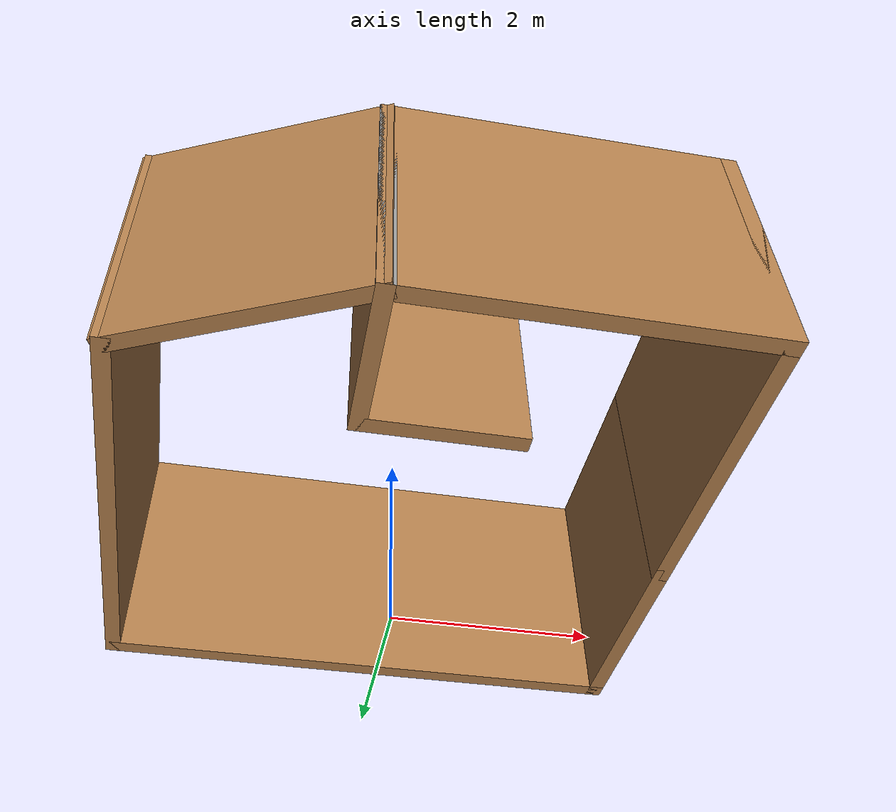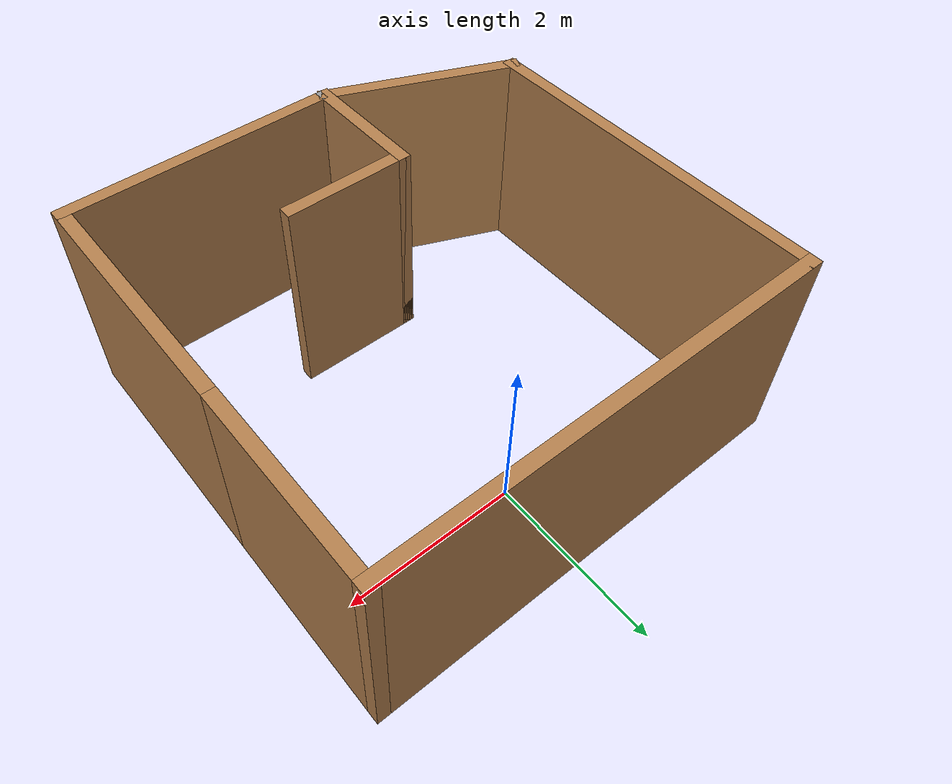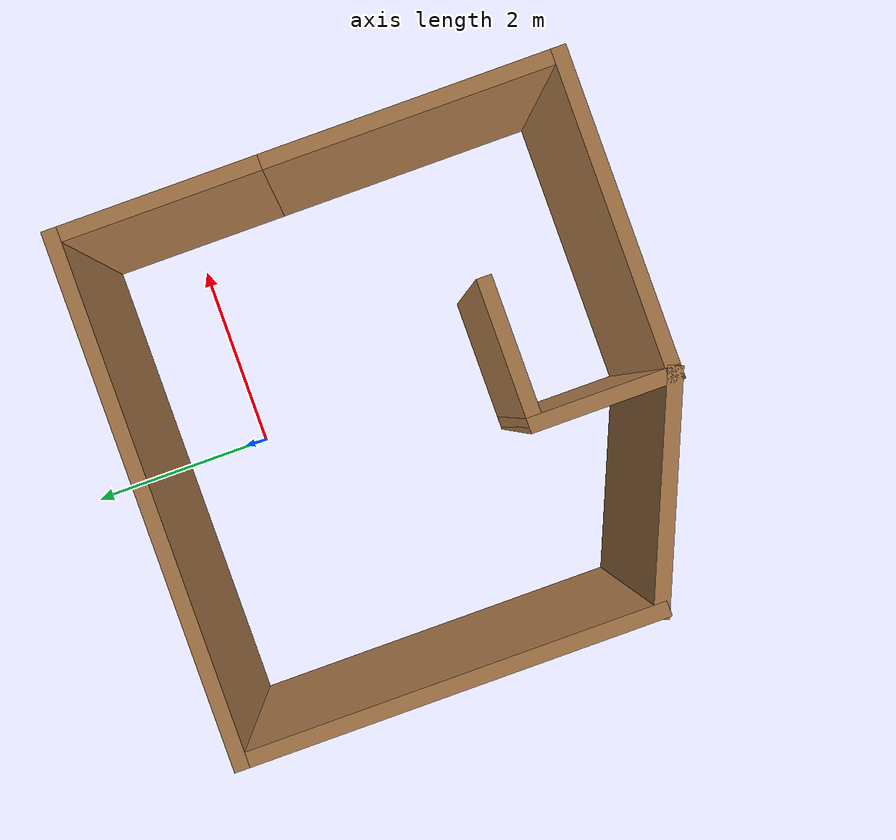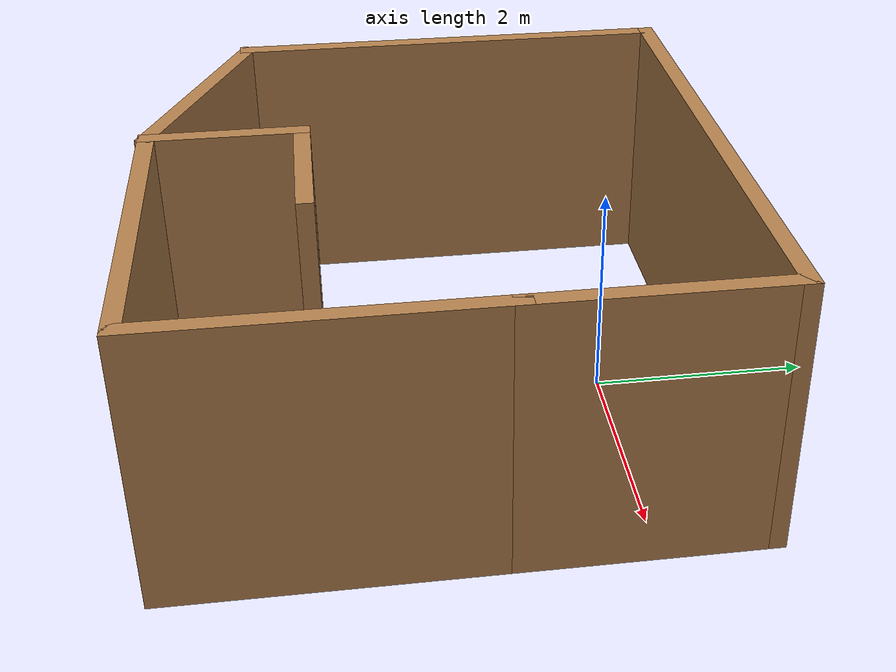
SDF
<?xml version='1.0'?>
<sdf version='1.7'>
  <model name='my_custom_world.world'>
    <pose>-0.17168 -1.50668 0 0 -0 0</pose>
    <link name='Wall_10'>
      <collision name='Wall_10_Collision'>
        <geometry>
          <box>
            <size>5.25 0.15 2.5</size>
          </box>
        </geometry>
        <pose>0 0 1.25 0 -0 0</pose>
      </collision>
      <visual name='Wall_10_Visual'>
        <pose>0 0 1.25 0 -0 0</pose>
        <geometry>
          <box>
            <size>5.25 0.15 2.5</size>
          </box>
        </geometry>
        <material>
          <script>
            <uri>file://media/materials/scripts/gazebo.material</uri>
            <name>Gazebo/Wood</name>
          </script>
          <ambient>1 1 1 1</ambient>
        </material>
        <meta>
          <layer>0</layer>
        </meta>
      </visual>
      <pose>0.01168 2.48668 0 0 -0 3.14159</pose>
    </link>
    <link name='Wall_11'>
      <collision name='Wall_11_Collision'>
        <geometry>
          <box>
            <size>4.25 0.15 2.5</size>
          </box>
        </geometry>
        <pose>0 0 1.25 0 -0 0</pose>
      </collision>
      <visual name='Wall_11_Visual'>
        <pose>0 0 1.25 0 -0 0</pose>
        <geometry>
          <box>
            <size>4.25 0.15 2.5</size>
          </box>
        </geometry>
        <material>
          <script>
            <uri>file://media/materials/scripts/gazebo.material</uri>
            <name>Gazebo/Wood</name>
          </script>
          <ambient>1 1 1 1</ambient>
        </material>
        <meta>
          <layer>0</layer>
        </meta>
      </visual>
      <pose>-2.53832 0.43668 0 0 -0 -1.5708</pose>
    </link>
    <link name='Wall_13'>
      <collision name='Wall_13_Collision'>
        <geometry>
          <box>
            <size>2.32313 0.15 2.5</size>
          </box>
        </geometry>
        <pose>0 0 1.25 0 -0 0</pose>
      </collision>
      <visual name='Wall_13_Visual'>
        <pose>0 0 1.25 0 -0 0</pose>
        <geometry>
          <box>
            <size>2.32313 0.15 2.5</size>
          </box>
        </geometry>
        <material>
          <script>
            <uri>file://media/materials/scripts/gazebo.material</uri>
            <name>Gazebo/Wood</name>
          </script>
          <ambient>1 1 1 1</ambient>
        </material>
        <meta>
          <layer>0</layer>
        </meta>
      </visual>
      <pose>-1.53832 -2.03832 0 0 -0 -0.401871</pose>
    </link>
    <link name='Wall_14'>
      <collision name='Wall_14_Collision'>
        <geometry>
          <box>
            <size>1.5 0.15 2.5</size>
          </box>
        </geometry>
        <pose>0 0 1.25 0 -0 0</pose>
      </collision>
      <visual name='Wall_14_Visual'>
        <pose>0 0 1.25 0 -0 0</pose>
        <geometry>
          <box>
            <size>1.5 0.15 2.5</size>
          </box>
        </geometry>
        <material>
          <script>
            <uri>file://media/materials/scripts/gazebo.material</uri>
            <name>Gazebo/Wood</name>
          </script>
          <ambient>1 1 1 1</ambient>
        </material>
        <meta>
          <layer>0</layer>
        </meta>
      </visual>
      <pose>-0.53832 -1.78832 0 0 -0 1.5708</pose>
    </link>
    <link name='Wall_15'>
      <collision name='Wall_15_Collision'>
        <geometry>
          <box>
            <size>1.5 0.15 2.5</size>
          </box>
        </geometry>
        <pose>0 0 1.25 0 -0 0</pose>
      </collision>
      <visual name='Wall_15_Visual'>
        <pose>0 0 1.25 0 -0 0</pose>
        <geometry>
          <box>
            <size>1.5 0.15 2.5</size>
          </box>
        </geometry>
        <material>
          <script>
            <uri>file://media/materials/scripts/gazebo.material</uri>
            <name>Gazebo/Wood</name>
          </script>
          <ambient>1 1 1 1</ambient>
        </material>
        <meta>
          <layer>0</layer>
        </meta>
      </visual>
      <pose>0.13668 -1.11332 0 0 -0 0</pose>
    </link>
    <link name='Wall_4'>
      <collision name='Wall_4_Collision'>
        <geometry>
          <box>
            <size>0.15 0.15 2.5</size>
          </box>
        </geometry>
        <pose>0 0 1.25 0 -0 0</pose>
      </collision>
      <visual name='Wall_4_Visual'>
        <pose>0 0 1.25 0 -0 0</pose>
        <geometry>
          <box>
            <size>0.15 0.15 2.5</size>
          </box>
        </geometry>
        <material>
          <script>
            <uri>file://media/materials/scripts/gazebo.material</uri>
            <name>Gazebo/Grey</name>
          </script>
          <ambient>1 1 1 1</ambient>
        </material>
        <meta>
          <layer>0</layer>
        </meta>
      </visual>
      <pose>-0.53832 -2.46332 0 0 -0 0</pose>
    </link>
    <link name='Wall_6'>
      <collision name='Wall_6_Collision'>
        <geometry>
          <box>
            <size>3.25 0.15 2.5</size>
          </box>
        </geometry>
        <pose>0 0 1.25 0 -0 0</pose>
      </collision>
      <visual name='Wall_6_Visual'>
        <pose>0 0 1.25 0 -0 0</pose>
        <geometry>
          <box>
            <size>3.25 0.15 2.5</size>
          </box>
        </geometry>
        <material>
          <script>
            <uri>file://media/materials/scripts/gazebo.material</uri>
            <name>Gazebo/Wood</name>
          </script>
          <ambient>1 1 1 1</ambient>
        </material>
        <meta>
          <layer>0</layer>
        </meta>
      </visual>
      <pose>1.01168 -2.46332 0 0 -0 0</pose>
    </link>
    <link name='Wall_7'>
      <collision name='Wall_7_Collision'>
        <geometry>
          <box>
            <size>3 0.15 2.5</size>
          </box>
        </geometry>
        <pose>0 0 1.25 0 -0 0</pose>
      </collision>
      <visual name='Wall_7_Visual'>
        <pose>0 0 1.25 0 -0 0</pose>
        <geometry>
          <box>
            <size>3 0.15 2.5</size>
          </box>
        </geometry>
        <material>
          <script>
            <uri>file://media/materials/scripts/gazebo.material</uri>
            <name>Gazebo/Wood</name>
          </script>
          <ambient>1 1 1 1</ambient>
        </material>
        <meta>
          <layer>0</layer>
        </meta>
      </visual>
      <pose>2.56168 -1.03832 0 0 -0 1.5708</pose>
    </link>
    <link name='Wall_9'>
      <collision name='Wall_9_Collision'>
        <geometry>
          <box>
            <size>2.25 0.15 2.5</size>
          </box>
        </geometry>
        <pose>0 0 1.25 0 -0 0</pose>
      </collision>
      <visual name='Wall_9_Visual'>
        <pose>0 0 1.25 0 -0 0</pose>
        <geometry>
          <box>
            <size>2.25 0.15 2.5</size>
          </box>
        </geometry>
        <material>
          <script>
            <uri>file://media/materials/scripts/gazebo.material</uri>
            <name>Gazebo/Wood</name>
          </script>
          <ambient>1 1 1 1</ambient>
        </material>
        <meta>
          <layer>0</layer>
        </meta>
      </visual>
      <pose>2.56168 1.43668 0 0 -0 1.5708</pose>
    </link>
    <static>1</static>
  </model>
</sdf>
